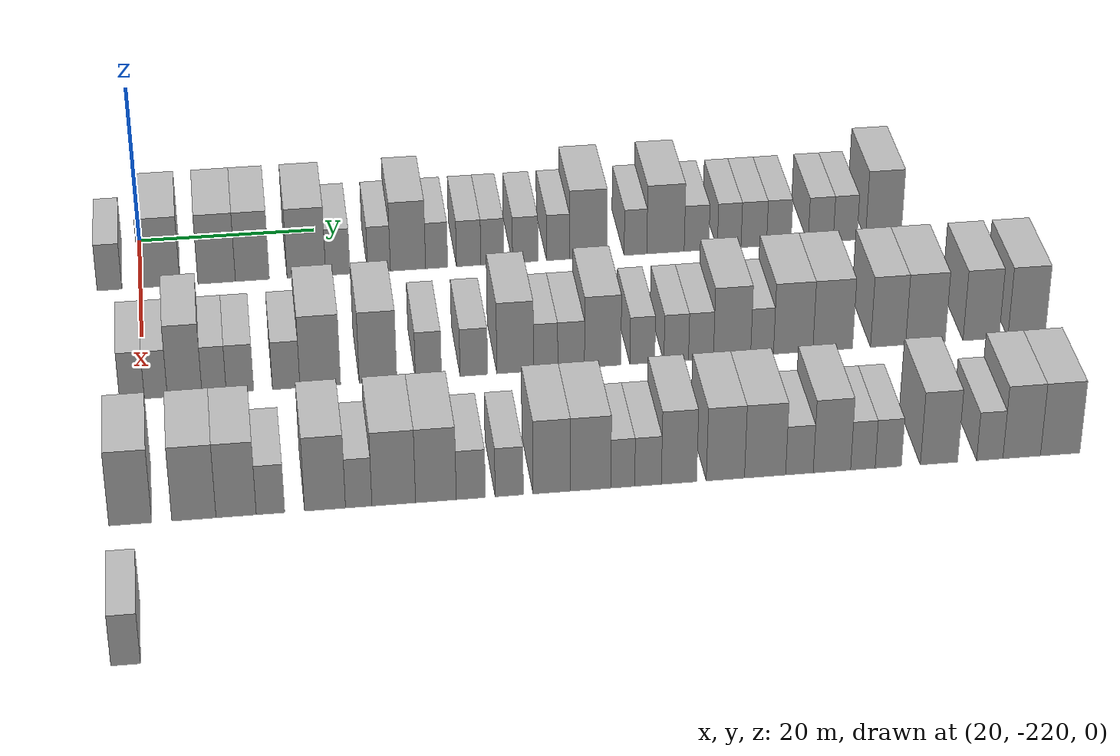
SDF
<sdf version="1.6">
 <world name="default">
  <model name="building_37">
   <static>1</static>
   <pose>25.0000 -223.4613 0 0.000000 0.000000 0.000000</pose>
   <link name="link">
    <pose>0 0 3.00 0 0 0</pose>
    <collision name="collision"><geometry><box><size>10.0000 2.7568 6.0000</size></box></geometry></collision>
    <visual name="visual">
     <cast_shadows>0</cast_shadows>
     <geometry><box><size>10.0000 2.7568 6.0000</size></box></geometry>
     <material>
      <script>
       <uri>model://HANNAS_wall/materials/scripts</uri>
       <uri>model://HANNAS_wall/materials/textures</uri>
       <name>vrc/HANNAS_wall</name>
      </script>
     </material>
    </visual>
   </link>
  </model>
  <model name="building_38">
   <static>1</static>
   <pose>25.0000 -217.8344 0 0.000000 0.000000 0.000000</pose>
   <link name="link">
    <pose>0 0 4.50 0 0 0</pose>
    <collision name="collision"><geometry><box><size>10.0000 4.4970 9.0000</size></box></geometry></collision>
    <visual name="visual">
     <cast_shadows>0</cast_shadows>
     <geometry><box><size>10.0000 4.4970 9.0000</size></box></geometry>
     <material>
      <script>
       <uri>model://HANNAS_wall/materials/scripts</uri>
       <uri>model://HANNAS_wall/materials/textures</uri>
       <name>vrc/HANNAS_wall</name>
      </script>
     </material>
    </visual>
   </link>
  </model>
  <model name="building_39">
   <static>1</static>
   <pose>25.0000 -211.4842 0 0.000000 0.000000 0.000000</pose>
   <link name="link">
    <pose>0 0 4.50 0 0 0</pose>
    <collision name="collision"><geometry><box><size>10.0000 4.2034 9.0000</size></box></geometry></collision>
    <visual name="visual">
     <cast_shadows>0</cast_shadows>
     <geometry><box><size>10.0000 4.2034 9.0000</size></box></geometry>
     <material>
      <script>
       <uri>model://HANNAS_wall/materials/scripts</uri>
       <uri>model://HANNAS_wall/materials/textures</uri>
       <name>vrc/HANNAS_wall</name>
      </script>
     </material>
    </visual>
   </link>
  </model>
  <model name="building_40">
   <static>1</static>
   <pose>25.0000 -207.4801 0 0.000000 0.000000 0.000000</pose>
   <link name="link">
    <pose>0 0 4.50 0 0 0</pose>
    <collision name="collision"><geometry><box><size>10.0000 3.8048 9.0000</size></box></geometry></collision>
    <visual name="visual">
     <cast_shadows>0</cast_shadows>
     <geometry><box><size>10.0000 3.8048 9.0000</size></box></geometry>
     <material>
      <script>
       <uri>model://HANNAS_wall/materials/scripts</uri>
       <uri>model://HANNAS_wall/materials/textures</uri>
       <name>vrc/HANNAS_wall</name>
      </script>
     </material>
    </visual>
   </link>
  </model>
  <model name="building_41">
   <static>1</static>
   <pose>25.0000 -201.3981 0 0.000000 0.000000 0.000000</pose>
   <link name="link">
    <pose>0 0 4.50 0 0 0</pose>
    <collision name="collision"><geometry><box><size>10.0000 4.3593 9.0000</size></box></geometry></collision>
    <visual name="visual">
     <cast_shadows>0</cast_shadows>
     <geometry><box><size>10.0000 4.3593 9.0000</size></box></geometry>
     <material>
      <script>
       <uri>model://HANNAS_wall/materials/scripts</uri>
       <uri>model://HANNAS_wall/materials/textures</uri>
       <name>vrc/HANNAS_wall</name>
      </script>
     </material>
    </visual>
   </link>
  </model>
  <model name="building_42">
   <static>1</static>
   <pose>25.0000 -197.8453 0 0.000000 0.000000 0.000000</pose>
   <link name="link">
    <pose>0 0 3.00 0 0 0</pose>
    <collision name="collision"><geometry><box><size>10.0000 2.7462 6.0000</size></box></geometry></collision>
    <visual name="visual">
     <cast_shadows>0</cast_shadows>
     <geometry><box><size>10.0000 2.7462 6.0000</size></box></geometry>
     <material>
      <script>
       <uri>model://HANNAS_wall/materials/scripts</uri>
       <uri>model://HANNAS_wall/materials/textures</uri>
       <name>vrc/HANNAS_wall</name>
      </script>
     </material>
    </visual>
   </link>
  </model>
  <model name="building_43">
   <static>1</static>
   <pose>25.0000 -193.1822 0 0.000000 0.000000 0.000000</pose>
   <link name="link">
    <pose>0 0 3.00 0 0 0</pose>
    <collision name="collision"><geometry><box><size>10.0000 2.5799 6.0000</size></box></geometry></collision>
    <visual name="visual">
     <cast_shadows>0</cast_shadows>
     <geometry><box><size>10.0000 2.5799 6.0000</size></box></geometry>
     <material>
      <script>
       <uri>model://HANNAS_wall/materials/scripts</uri>
       <uri>model://HANNAS_wall/materials/textures</uri>
       <name>vrc/HANNAS_wall</name>
      </script>
     </material>
    </visual>
   </link>
  </model>
  <model name="building_44">
   <static>1</static>
   <pose>25.0000 -189.8920 0 0.000000 0.000000 0.000000</pose>
   <link name="link">
    <pose>0 0 4.50 0 0 0</pose>
    <collision name="collision"><geometry><box><size>10.0000 4.0007 9.0000</size></box></geometry></collision>
    <visual name="visual">
     <cast_shadows>0</cast_shadows>
     <geometry><box><size>10.0000 4.0007 9.0000</size></box></geometry>
     <material>
      <script>
       <uri>model://HANNAS_wall/materials/scripts</uri>
       <uri>model://HANNAS_wall/materials/textures</uri>
       <name>vrc/HANNAS_wall</name>
      </script>
     </material>
    </visual>
   </link>
  </model>
  <model name="building_45">
   <static>1</static>
   <pose>25.0000 -186.6365 0 0.000000 0.000000 0.000000</pose>
   <link name="link">
    <pose>0 0 3.00 0 0 0</pose>
    <collision name="collision"><geometry><box><size>10.0000 2.5104 6.0000</size></box></geometry></collision>
    <visual name="visual">
     <cast_shadows>0</cast_shadows>
     <geometry><box><size>10.0000 2.5104 6.0000</size></box></geometry>
     <material>
      <script>
       <uri>model://HANNAS_wall/materials/scripts</uri>
       <uri>model://HANNAS_wall/materials/textures</uri>
       <name>vrc/HANNAS_wall</name>
      </script>
     </material>
    </visual>
   </link>
  </model>
  <model name="building_46">
   <static>1</static>
   <pose>25.0000 -182.9909 0 0.000000 0.000000 0.000000</pose>
   <link name="link">
    <pose>0 0 3.00 0 0 0</pose>
    <collision name="collision"><geometry><box><size>10.0000 2.7807 6.0000</size></box></geometry></collision>
    <visual name="visual">
     <cast_shadows>0</cast_shadows>
     <geometry><box><size>10.0000 2.7807 6.0000</size></box></geometry>
     <material>
      <script>
       <uri>model://HANNAS_wall/materials/scripts</uri>
       <uri>model://HANNAS_wall/materials/textures</uri>
       <name>vrc/HANNAS_wall</name>
      </script>
     </material>
    </visual>
   </link>
  </model>
  <model name="building_47">
   <static>1</static>
   <pose>25.0000 -180.2894 0 0.000000 0.000000 0.000000</pose>
   <link name="link">
    <pose>0 0 3.00 0 0 0</pose>
    <collision name="collision"><geometry><box><size>10.0000 2.6222 6.0000</size></box></geometry></collision>
    <visual name="visual">
     <cast_shadows>0</cast_shadows>
     <geometry><box><size>10.0000 2.6222 6.0000</size></box></geometry>
     <material>
      <script>
       <uri>model://HANNAS_wall/materials/scripts</uri>
       <uri>model://HANNAS_wall/materials/textures</uri>
       <name>vrc/HANNAS_wall</name>
      </script>
     </material>
    </visual>
   </link>
  </model>
  <model name="building_48">
   <static>1</static>
   <pose>25.0000 -176.5260 0 0.000000 0.000000 0.000000</pose>
   <link name="link">
    <pose>0 0 3.00 0 0 0</pose>
    <collision name="collision"><geometry><box><size>10.0000 2.9046 6.0000</size></box></geometry></collision>
    <visual name="visual">
     <cast_shadows>0</cast_shadows>
     <geometry><box><size>10.0000 2.9046 6.0000</size></box></geometry>
     <material>
      <script>
       <uri>model://HANNAS_wall/materials/scripts</uri>
       <uri>model://HANNAS_wall/materials/textures</uri>
       <name>vrc/HANNAS_wall</name>
      </script>
     </material>
    </visual>
   </link>
  </model>
  <model name="building_49">
   <static>1</static>
   <pose>25.0000 -172.7656 0 0.000000 0.000000 0.000000</pose>
   <link name="link">
    <pose>0 0 3.00 0 0 0</pose>
    <collision name="collision"><geometry><box><size>10.0000 2.6161 6.0000</size></box></geometry></collision>
    <visual name="visual">
     <cast_shadows>0</cast_shadows>
     <geometry><box><size>10.0000 2.6161 6.0000</size></box></geometry>
     <material>
      <script>
       <uri>model://HANNAS_wall/materials/scripts</uri>
       <uri>model://HANNAS_wall/materials/textures</uri>
       <name>vrc/HANNAS_wall</name>
      </script>
     </material>
    </visual>
   </link>
  </model>
  <model name="building_50">
   <static>1</static>
   <pose>25.0000 -169.3121 0 0.000000 0.000000 0.000000</pose>
   <link name="link">
    <pose>0 0 4.50 0 0 0</pose>
    <collision name="collision"><geometry><box><size>10.0000 4.2911 9.0000</size></box></geometry></collision>
    <visual name="visual">
     <cast_shadows>0</cast_shadows>
     <geometry><box><size>10.0000 4.2911 9.0000</size></box></geometry>
     <material>
      <script>
       <uri>model://HANNAS_wall/materials/scripts</uri>
       <uri>model://HANNAS_wall/materials/textures</uri>
       <name>vrc/HANNAS_wall</name>
      </script>
     </material>
    </visual>
   </link>
  </model>
  <model name="building_51">
   <static>1</static>
   <pose>25.0000 -163.8628 0 0.000000 0.000000 0.000000</pose>
   <link name="link">
    <pose>0 0 3.00 0 0 0</pose>
    <collision name="collision"><geometry><box><size>10.0000 2.6074 6.0000</size></box></geometry></collision>
    <visual name="visual">
     <cast_shadows>0</cast_shadows>
     <geometry><box><size>10.0000 2.6074 6.0000</size></box></geometry>
     <material>
      <script>
       <uri>model://HANNAS_wall/materials/scripts</uri>
       <uri>model://HANNAS_wall/materials/textures</uri>
       <name>vrc/HANNAS_wall</name>
      </script>
     </material>
    </visual>
   </link>
  </model>
  <model name="building_52">
   <static>1</static>
   <pose>25.0000 -160.3956 0 0.000000 0.000000 0.000000</pose>
   <link name="link">
    <pose>0 0 4.50 0 0 0</pose>
    <collision name="collision"><geometry><box><size>10.0000 4.3271 9.0000</size></box></geometry></collision>
    <visual name="visual">
     <cast_shadows>0</cast_shadows>
     <geometry><box><size>10.0000 4.3271 9.0000</size></box></geometry>
     <material>
      <script>
       <uri>model://HANNAS_wall/materials/scripts</uri>
       <uri>model://HANNAS_wall/materials/textures</uri>
       <name>vrc/HANNAS_wall</name>
      </script>
     </material>
    </visual>
   </link>
  </model>
  <model name="building_53">
   <static>1</static>
   <pose>25.0000 -156.8101 0 0.000000 0.000000 0.000000</pose>
   <link name="link">
    <pose>0 0 3.00 0 0 0</pose>
    <collision name="collision"><geometry><box><size>10.0000 2.8438 6.0000</size></box></geometry></collision>
    <visual name="visual">
     <cast_shadows>0</cast_shadows>
     <geometry><box><size>10.0000 2.8438 6.0000</size></box></geometry>
     <material>
      <script>
       <uri>model://HANNAS_wall/materials/scripts</uri>
       <uri>model://HANNAS_wall/materials/textures</uri>
       <name>vrc/HANNAS_wall</name>
      </script>
     </material>
    </visual>
   </link>
  </model>
  <model name="building_54">
   <static>1</static>
   <pose>25.0000 -153.0133 0 0.000000 0.000000 0.000000</pose>
   <link name="link">
    <pose>0 0 3.00 0 0 0</pose>
    <collision name="collision"><geometry><box><size>10.0000 2.7499 6.0000</size></box></geometry></collision>
    <visual name="visual">
     <cast_shadows>0</cast_shadows>
     <geometry><box><size>10.0000 2.7499 6.0000</size></box></geometry>
     <material>
      <script>
       <uri>model://HANNAS_wall/materials/scripts</uri>
       <uri>model://HANNAS_wall/materials/textures</uri>
       <name>vrc/HANNAS_wall</name>
      </script>
     </material>
    </visual>
   </link>
  </model>
  <model name="building_55">
   <static>1</static>
   <pose>25.0000 -150.1531 0 0.000000 0.000000 0.000000</pose>
   <link name="link">
    <pose>0 0 3.00 0 0 0</pose>
    <collision name="collision"><geometry><box><size>10.0000 2.9705 6.0000</size></box></geometry></collision>
    <visual name="visual">
     <cast_shadows>0</cast_shadows>
     <geometry><box><size>10.0000 2.9705 6.0000</size></box></geometry>
     <material>
      <script>
       <uri>model://HANNAS_wall/materials/scripts</uri>
       <uri>model://HANNAS_wall/materials/textures</uri>
       <name>vrc/HANNAS_wall</name>
      </script>
     </material>
    </visual>
   </link>
  </model>
  <model name="building_56">
   <static>1</static>
   <pose>25.0000 -147.2460 0 0.000000 0.000000 0.000000</pose>
   <link name="link">
    <pose>0 0 3.00 0 0 0</pose>
    <collision name="collision"><geometry><box><size>10.0000 2.8437 6.0000</size></box></geometry></collision>
    <visual name="visual">
     <cast_shadows>0</cast_shadows>
     <geometry><box><size>10.0000 2.8437 6.0000</size></box></geometry>
     <material>
      <script>
       <uri>model://HANNAS_wall/materials/scripts</uri>
       <uri>model://HANNAS_wall/materials/textures</uri>
       <name>vrc/HANNAS_wall</name>
      </script>
     </material>
    </visual>
   </link>
  </model>
  <model name="building_57">
   <static>1</static>
   <pose>25.0000 -142.3547 0 0.000000 0.000000 0.000000</pose>
   <link name="link">
    <pose>0 0 3.00 0 0 0</pose>
    <collision name="collision"><geometry><box><size>10.0000 2.9388 6.0000</size></box></geometry></collision>
    <visual name="visual">
     <cast_shadows>0</cast_shadows>
     <geometry><box><size>10.0000 2.9388 6.0000</size></box></geometry>
     <material>
      <script>
       <uri>model://HANNAS_wall/materials/scripts</uri>
       <uri>model://HANNAS_wall/materials/textures</uri>
       <name>vrc/HANNAS_wall</name>
      </script>
     </material>
    </visual>
   </link>
  </model>
  <model name="building_58">
   <static>1</static>
   <pose>25.0000 -139.4949 0 0.000000 0.000000 0.000000</pose>
   <link name="link">
    <pose>0 0 3.00 0 0 0</pose>
    <collision name="collision"><geometry><box><size>10.0000 2.7809 6.0000</size></box></geometry></collision>
    <visual name="visual">
     <cast_shadows>0</cast_shadows>
     <geometry><box><size>10.0000 2.7809 6.0000</size></box></geometry>
     <material>
      <script>
       <uri>model://HANNAS_wall/materials/scripts</uri>
       <uri>model://HANNAS_wall/materials/textures</uri>
       <name>vrc/HANNAS_wall</name>
      </script>
     </material>
    </visual>
   </link>
  </model>
  <model name="building_59">
   <static>1</static>
   <pose>25.0000 -135.0178 0 0.000000 0.000000 0.000000</pose>
   <link name="link">
    <pose>0 0 4.50 0 0 0</pose>
    <collision name="collision"><geometry><box><size>10.0000 4.1733 9.0000</size></box></geometry></collision>
    <visual name="visual">
     <cast_shadows>0</cast_shadows>
     <geometry><box><size>10.0000 4.1733 9.0000</size></box></geometry>
     <material>
      <script>
       <uri>model://HANNAS_wall/materials/scripts</uri>
       <uri>model://HANNAS_wall/materials/textures</uri>
       <name>vrc/HANNAS_wall</name>
      </script>
     </material>
    </visual>
   </link>
  </model>
  <model name="building_224">
   <static>1</static>
   <pose>47.0000 -221.1367 0 0.000000 0.000000 0.000000</pose>
   <link name="link">
    <pose>0 0 3.00 0 0 0</pose>
    <collision name="collision"><geometry><box><size>10.0000 2.6164 6.0000</size></box></geometry></collision>
    <visual name="visual">
     <cast_shadows>0</cast_shadows>
     <geometry><box><size>10.0000 2.6164 6.0000</size></box></geometry>
     <material>
      <script>
       <uri>model://HANNAS_wall/materials/scripts</uri>
       <uri>model://HANNAS_wall/materials/textures</uri>
       <name>vrc/HANNAS_wall</name>
      </script>
     </material>
    </visual>
   </link>
  </model>
  <model name="building_225">
   <static>1</static>
   <pose>47.0000 -218.6126 0 0.000000 0.000000 0.000000</pose>
   <link name="link">
    <pose>0 0 3.00 0 0 0</pose>
    <collision name="collision"><geometry><box><size>10.0000 2.4319 6.0000</size></box></geometry></collision>
    <visual name="visual">
     <cast_shadows>0</cast_shadows>
     <geometry><box><size>10.0000 2.4319 6.0000</size></box></geometry>
     <material>
      <script>
       <uri>model://HANNAS_wall/materials/scripts</uri>
       <uri>model://HANNAS_wall/materials/textures</uri>
       <name>vrc/HANNAS_wall</name>
      </script>
     </material>
    </visual>
   </link>
  </model>
  <model name="building_226">
   <static>1</static>
   <pose>47.0000 -215.5607 0 0.000000 0.000000 0.000000</pose>
   <link name="link">
    <pose>0 0 4.50 0 0 0</pose>
    <collision name="collision"><geometry><box><size>10.0000 3.6720 9.0000</size></box></geometry></collision>
    <visual name="visual">
     <cast_shadows>0</cast_shadows>
     <geometry><box><size>10.0000 3.6720 9.0000</size></box></geometry>
     <material>
      <script>
       <uri>model://HANNAS_wall/materials/scripts</uri>
       <uri>model://HANNAS_wall/materials/textures</uri>
       <name>vrc/HANNAS_wall</name>
      </script>
     </material>
    </visual>
   </link>
  </model>
  <model name="building_227">
   <static>1</static>
   <pose>47.0000 -212.4374 0 0.000000 0.000000 0.000000</pose>
   <link name="link">
    <pose>0 0 3.00 0 0 0</pose>
    <collision name="collision"><geometry><box><size>10.0000 2.5745 6.0000</size></box></geometry></collision>
    <visual name="visual">
     <cast_shadows>0</cast_shadows>
     <geometry><box><size>10.0000 2.5745 6.0000</size></box></geometry>
     <material>
      <script>
       <uri>model://HANNAS_wall/materials/scripts</uri>
       <uri>model://HANNAS_wall/materials/textures</uri>
       <name>vrc/HANNAS_wall</name>
      </script>
     </material>
    </visual>
   </link>
  </model>
  <model name="building_228">
   <static>1</static>
   <pose>47.0000 -209.6906 0 0.000000 0.000000 0.000000</pose>
   <link name="link">
    <pose>0 0 3.00 0 0 0</pose>
    <collision name="collision"><geometry><box><size>10.0000 2.9191 6.0000</size></box></geometry></collision>
    <visual name="visual">
     <cast_shadows>0</cast_shadows>
     <geometry><box><size>10.0000 2.9191 6.0000</size></box></geometry>
     <material>
      <script>
       <uri>model://HANNAS_wall/materials/scripts</uri>
       <uri>model://HANNAS_wall/materials/textures</uri>
       <name>vrc/HANNAS_wall</name>
      </script>
     </material>
    </visual>
   </link>
  </model>
  <model name="building_229">
   <static>1</static>
   <pose>47.0000 -204.7652 0 0.000000 0.000000 0.000000</pose>
   <link name="link">
    <pose>0 0 3.00 0 0 0</pose>
    <collision name="collision"><geometry><box><size>10.0000 2.9318 6.0000</size></box></geometry></collision>
    <visual name="visual">
     <cast_shadows>0</cast_shadows>
     <geometry><box><size>10.0000 2.9318 6.0000</size></box></geometry>
     <material>
      <script>
       <uri>model://HANNAS_wall/materials/scripts</uri>
       <uri>model://HANNAS_wall/materials/textures</uri>
       <name>vrc/HANNAS_wall</name>
      </script>
     </material>
    </visual>
   </link>
  </model>
  <model name="building_230">
   <static>1</static>
   <pose>47.0000 -201.1268 0 0.000000 0.000000 0.000000</pose>
   <link name="link">
    <pose>0 0 4.50 0 0 0</pose>
    <collision name="collision"><geometry><box><size>10.0000 4.3448 9.0000</size></box></geometry></collision>
    <visual name="visual">
     <cast_shadows>0</cast_shadows>
     <geometry><box><size>10.0000 4.3448 9.0000</size></box></geometry>
     <material>
      <script>
       <uri>model://HANNAS_wall/materials/scripts</uri>
       <uri>model://HANNAS_wall/materials/textures</uri>
       <name>vrc/HANNAS_wall</name>
      </script>
     </material>
    </visual>
   </link>
  </model>
  <model name="building_231">
   <static>1</static>
   <pose>47.0000 -194.9385 0 0.000000 0.000000 0.000000</pose>
   <link name="link">
    <pose>0 0 4.50 0 0 0</pose>
    <collision name="collision"><geometry><box><size>10.0000 4.0318 9.0000</size></box></geometry></collision>
    <visual name="visual">
     <cast_shadows>0</cast_shadows>
     <geometry><box><size>10.0000 4.0318 9.0000</size></box></geometry>
     <material>
      <script>
       <uri>model://HANNAS_wall/materials/scripts</uri>
       <uri>model://HANNAS_wall/materials/textures</uri>
       <name>vrc/HANNAS_wall</name>
      </script>
     </material>
    </visual>
   </link>
  </model>
  <model name="building_232">
   <static>1</static>
   <pose>47.0000 -189.5181 0 0.000000 0.000000 0.000000</pose>
   <link name="link">
    <pose>0 0 3.00 0 0 0</pose>
    <collision name="collision"><geometry><box><size>10.0000 2.8091 6.0000</size></box></geometry></collision>
    <visual name="visual">
     <cast_shadows>0</cast_shadows>
     <geometry><box><size>10.0000 2.8091 6.0000</size></box></geometry>
     <material>
      <script>
       <uri>model://HANNAS_wall/materials/scripts</uri>
       <uri>model://HANNAS_wall/materials/textures</uri>
       <name>vrc/HANNAS_wall</name>
      </script>
     </material>
    </visual>
   </link>
  </model>
  <model name="building_233">
   <static>1</static>
   <pose>47.0000 -184.6235 0 0.000000 0.000000 0.000000</pose>
   <link name="link">
    <pose>0 0 3.00 0 0 0</pose>
    <collision name="collision"><geometry><box><size>10.0000 2.9800 6.0000</size></box></geometry></collision>
    <visual name="visual">
     <cast_shadows>0</cast_shadows>
     <geometry><box><size>10.0000 2.9800 6.0000</size></box></geometry>
     <material>
      <script>
       <uri>model://HANNAS_wall/materials/scripts</uri>
       <uri>model://HANNAS_wall/materials/textures</uri>
       <name>vrc/HANNAS_wall</name>
      </script>
     </material>
    </visual>
   </link>
  </model>
  <model name="building_234">
   <static>1</static>
   <pose>47.0000 -180.1509 0 0.000000 0.000000 0.000000</pose>
   <link name="link">
    <pose>0 0 4.50 0 0 0</pose>
    <collision name="collision"><geometry><box><size>10.0000 3.9651 9.0000</size></box></geometry></collision>
    <visual name="visual">
     <cast_shadows>0</cast_shadows>
     <geometry><box><size>10.0000 3.9651 9.0000</size></box></geometry>
     <material>
      <script>
       <uri>model://HANNAS_wall/materials/scripts</uri>
       <uri>model://HANNAS_wall/materials/textures</uri>
       <name>vrc/HANNAS_wall</name>
      </script>
     </material>
    </visual>
   </link>
  </model>
  <model name="building_235">
   <static>1</static>
   <pose>47.0000 -176.8552 0 0.000000 0.000000 0.000000</pose>
   <link name="link">
    <pose>0 0 3.00 0 0 0</pose>
    <collision name="collision"><geometry><box><size>10.0000 2.6263 6.0000</size></box></geometry></collision>
    <visual name="visual">
     <cast_shadows>0</cast_shadows>
     <geometry><box><size>10.0000 2.6263 6.0000</size></box></geometry>
     <material>
      <script>
       <uri>model://HANNAS_wall/materials/scripts</uri>
       <uri>model://HANNAS_wall/materials/textures</uri>
       <name>vrc/HANNAS_wall</name>
      </script>
     </material>
    </visual>
   </link>
  </model>
  <model name="building_236">
   <static>1</static>
   <pose>47.0000 -174.0879 0 0.000000 0.000000 0.000000</pose>
   <link name="link">
    <pose>0 0 3.00 0 0 0</pose>
    <collision name="collision"><geometry><box><size>10.0000 2.9083 6.0000</size></box></geometry></collision>
    <visual name="visual">
     <cast_shadows>0</cast_shadows>
     <geometry><box><size>10.0000 2.9083 6.0000</size></box></geometry>
     <material>
      <script>
       <uri>model://HANNAS_wall/materials/scripts</uri>
       <uri>model://HANNAS_wall/materials/textures</uri>
       <name>vrc/HANNAS_wall</name>
      </script>
     </material>
    </visual>
   </link>
  </model>
  <model name="building_237">
   <static>1</static>
   <pose>47.0000 -170.6551 0 0.000000 0.000000 0.000000</pose>
   <link name="link">
    <pose>0 0 4.50 0 0 0</pose>
    <collision name="collision"><geometry><box><size>10.0000 3.9573 9.0000</size></box></geometry></collision>
    <visual name="visual">
     <cast_shadows>0</cast_shadows>
     <geometry><box><size>10.0000 3.9573 9.0000</size></box></geometry>
     <material>
      <script>
       <uri>model://HANNAS_wall/materials/scripts</uri>
       <uri>model://HANNAS_wall/materials/textures</uri>
       <name>vrc/HANNAS_wall</name>
      </script>
     </material>
    </visual>
   </link>
  </model>
  <model name="building_238">
   <static>1</static>
   <pose>47.0000 -166.3206 0 0.000000 0.000000 0.000000</pose>
   <link name="link">
    <pose>0 0 3.00 0 0 0</pose>
    <collision name="collision"><geometry><box><size>10.0000 2.7118 6.0000</size></box></geometry></collision>
    <visual name="visual">
     <cast_shadows>0</cast_shadows>
     <geometry><box><size>10.0000 2.7118 6.0000</size></box></geometry>
     <material>
      <script>
       <uri>model://HANNAS_wall/materials/scripts</uri>
       <uri>model://HANNAS_wall/materials/textures</uri>
       <name>vrc/HANNAS_wall</name>
      </script>
     </material>
    </visual>
   </link>
  </model>
  <model name="building_239">
   <static>1</static>
   <pose>47.0000 -162.6172 0 0.000000 0.000000 0.000000</pose>
   <link name="link">
    <pose>0 0 3.00 0 0 0</pose>
    <collision name="collision"><geometry><box><size>10.0000 2.6948 6.0000</size></box></geometry></collision>
    <visual name="visual">
     <cast_shadows>0</cast_shadows>
     <geometry><box><size>10.0000 2.6948 6.0000</size></box></geometry>
     <material>
      <script>
       <uri>model://HANNAS_wall/materials/scripts</uri>
       <uri>model://HANNAS_wall/materials/textures</uri>
       <name>vrc/HANNAS_wall</name>
      </script>
     </material>
    </visual>
   </link>
  </model>
  <model name="building_240">
   <static>1</static>
   <pose>47.0000 -159.9008 0 0.000000 0.000000 0.000000</pose>
   <link name="link">
    <pose>0 0 3.00 0 0 0</pose>
    <collision name="collision"><geometry><box><size>10.0000 2.7381 6.0000</size></box></geometry></collision>
    <visual name="visual">
     <cast_shadows>0</cast_shadows>
     <geometry><box><size>10.0000 2.7381 6.0000</size></box></geometry>
     <material>
      <script>
       <uri>model://HANNAS_wall/materials/scripts</uri>
       <uri>model://HANNAS_wall/materials/textures</uri>
       <name>vrc/HANNAS_wall</name>
      </script>
     </material>
    </visual>
   </link>
  </model>
  <model name="building_241">
   <static>1</static>
   <pose>47.0000 -156.4852 0 0.000000 0.000000 0.000000</pose>
   <link name="link">
    <pose>0 0 4.50 0 0 0</pose>
    <collision name="collision"><geometry><box><size>10.0000 4.0929 9.0000</size></box></geometry></collision>
    <visual name="visual">
     <cast_shadows>0</cast_shadows>
     <geometry><box><size>10.0000 4.0929 9.0000</size></box></geometry>
     <material>
      <script>
       <uri>model://HANNAS_wall/materials/scripts</uri>
       <uri>model://HANNAS_wall/materials/textures</uri>
       <name>vrc/HANNAS_wall</name>
      </script>
     </material>
    </visual>
   </link>
  </model>
  <model name="building_242">
   <static>1</static>
   <pose>47.0000 -153.1808 0 0.000000 0.000000 0.000000</pose>
   <link name="link">
    <pose>0 0 3.00 0 0 0</pose>
    <collision name="collision"><geometry><box><size>10.0000 2.5161 6.0000</size></box></geometry></collision>
    <visual name="visual">
     <cast_shadows>0</cast_shadows>
     <geometry><box><size>10.0000 2.5161 6.0000</size></box></geometry>
     <material>
      <script>
       <uri>model://HANNAS_wall/materials/scripts</uri>
       <uri>model://HANNAS_wall/materials/textures</uri>
       <name>vrc/HANNAS_wall</name>
      </script>
     </material>
    </visual>
   </link>
  </model>
  <model name="building_243">
   <static>1</static>
   <pose>47.0000 -149.7493 0 0.000000 0.000000 0.000000</pose>
   <link name="link">
    <pose>0 0 4.50 0 0 0</pose>
    <collision name="collision"><geometry><box><size>10.0000 4.3468 9.0000</size></box></geometry></collision>
    <visual name="visual">
     <cast_shadows>0</cast_shadows>
     <geometry><box><size>10.0000 4.3468 9.0000</size></box></geometry>
     <material>
      <script>
       <uri>model://HANNAS_wall/materials/scripts</uri>
       <uri>model://HANNAS_wall/materials/textures</uri>
       <name>vrc/HANNAS_wall</name>
      </script>
     </material>
    </visual>
   </link>
  </model>
  <model name="building_244">
   <static>1</static>
   <pose>47.0000 -145.3780 0 0.000000 0.000000 0.000000</pose>
   <link name="link">
    <pose>0 0 4.50 0 0 0</pose>
    <collision name="collision"><geometry><box><size>10.0000 4.3959 9.0000</size></box></geometry></collision>
    <visual name="visual">
     <cast_shadows>0</cast_shadows>
     <geometry><box><size>10.0000 4.3959 9.0000</size></box></geometry>
     <material>
      <script>
       <uri>model://HANNAS_wall/materials/scripts</uri>
       <uri>model://HANNAS_wall/materials/textures</uri>
       <name>vrc/HANNAS_wall</name>
      </script>
     </material>
    </visual>
   </link>
  </model>
  <model name="building_245">
   <static>1</static>
   <pose>47.0000 -139.2296 0 0.000000 0.000000 0.000000</pose>
   <link name="link">
    <pose>0 0 4.50 0 0 0</pose>
    <collision name="collision"><geometry><box><size>10.0000 3.9009 9.0000</size></box></geometry></collision>
    <visual name="visual">
     <cast_shadows>0</cast_shadows>
     <geometry><box><size>10.0000 3.9009 9.0000</size></box></geometry>
     <material>
      <script>
       <uri>model://HANNAS_wall/materials/scripts</uri>
       <uri>model://HANNAS_wall/materials/textures</uri>
       <name>vrc/HANNAS_wall</name>
      </script>
     </material>
    </visual>
   </link>
  </model>
  <model name="building_246">
   <static>1</static>
   <pose>47.0000 -135.0767 0 0.000000 0.000000 0.000000</pose>
   <link name="link">
    <pose>0 0 4.50 0 0 0</pose>
    <collision name="collision"><geometry><box><size>10.0000 4.4049 9.0000</size></box></geometry></collision>
    <visual name="visual">
     <cast_shadows>0</cast_shadows>
     <geometry><box><size>10.0000 4.4049 9.0000</size></box></geometry>
     <material>
      <script>
       <uri>model://HANNAS_wall/materials/scripts</uri>
       <uri>model://HANNAS_wall/materials/textures</uri>
       <name>vrc/HANNAS_wall</name>
      </script>
     </material>
    </visual>
   </link>
  </model>
  <model name="building_247">
   <static>1</static>
   <pose>47.0000 -128.8627 0 0.000000 0.000000 0.000000</pose>
   <link name="link">
    <pose>0 0 4.50 0 0 0</pose>
    <collision name="collision"><geometry><box><size>10.0000 4.0230 9.0000</size></box></geometry></collision>
    <visual name="visual">
     <cast_shadows>0</cast_shadows>
     <geometry><box><size>10.0000 4.0230 9.0000</size></box></geometry>
     <material>
      <script>
       <uri>model://HANNAS_wall/materials/scripts</uri>
       <uri>model://HANNAS_wall/materials/textures</uri>
       <name>vrc/HANNAS_wall</name>
      </script>
     </material>
    </visual>
   </link>
  </model>
  <model name="building_248">
   <static>1</static>
   <pose>47.0000 -123.7600 0 0.000000 0.000000 0.000000</pose>
   <link name="link">
    <pose>0 0 4.50 0 0 0</pose>
    <collision name="collision"><geometry><box><size>10.0000 4.1823 9.0000</size></box></geometry></collision>
    <visual name="visual">
     <cast_shadows>0</cast_shadows>
     <geometry><box><size>10.0000 4.1823 9.0000</size></box></geometry>
     <material>
      <script>
       <uri>model://HANNAS_wall/materials/scripts</uri>
       <uri>model://HANNAS_wall/materials/textures</uri>
       <name>vrc/HANNAS_wall</name>
      </script>
     </material>
    </visual>
   </link>
  </model>
  <model name="building_407">
   <static>1</static>
   <pose>69.0000 -221.4726 0 0.000000 0.000000 0.000000</pose>
   <link name="link">
    <pose>0 0 4.50 0 0 0</pose>
    <collision name="collision"><geometry><box><size>10.0000 4.2784 9.0000</size></box></geometry></collision>
    <visual name="visual">
     <cast_shadows>0</cast_shadows>
     <geometry><box><size>10.0000 4.2784 9.0000</size></box></geometry>
     <material>
      <script>
       <uri>model://HANNAS_wall/materials/scripts</uri>
       <uri>model://HANNAS_wall/materials/textures</uri>
       <name>vrc/HANNAS_wall</name>
      </script>
     </material>
    </visual>
   </link>
  </model>
  <model name="building_408">
   <static>1</static>
   <pose>69.0000 -215.1237 0 0.000000 0.000000 0.000000</pose>
   <link name="link">
    <pose>0 0 4.50 0 0 0</pose>
    <collision name="collision"><geometry><box><size>10.0000 4.4194 9.0000</size></box></geometry></collision>
    <visual name="visual">
     <cast_shadows>0</cast_shadows>
     <geometry><box><size>10.0000 4.4194 9.0000</size></box></geometry>
     <material>
      <script>
       <uri>model://HANNAS_wall/materials/scripts</uri>
       <uri>model://HANNAS_wall/materials/textures</uri>
       <name>vrc/HANNAS_wall</name>
      </script>
     </material>
    </visual>
   </link>
  </model>
  <model name="building_409">
   <static>1</static>
   <pose>69.0000 -210.8952 0 0.000000 0.000000 0.000000</pose>
   <link name="link">
    <pose>0 0 4.50 0 0 0</pose>
    <collision name="collision"><geometry><box><size>10.0000 4.0376 9.0000</size></box></geometry></collision>
    <visual name="visual">
     <cast_shadows>0</cast_shadows>
     <geometry><box><size>10.0000 4.0376 9.0000</size></box></geometry>
     <material>
      <script>
       <uri>model://HANNAS_wall/materials/scripts</uri>
       <uri>model://HANNAS_wall/materials/textures</uri>
       <name>vrc/HANNAS_wall</name>
      </script>
     </material>
    </visual>
   </link>
  </model>
  <model name="building_410">
   <static>1</static>
   <pose>69.0000 -207.4469 0 0.000000 0.000000 0.000000</pose>
   <link name="link">
    <pose>0 0 3.00 0 0 0</pose>
    <collision name="collision"><geometry><box><size>10.0000 2.8589 6.0000</size></box></geometry></collision>
    <visual name="visual">
     <cast_shadows>0</cast_shadows>
     <geometry><box><size>10.0000 2.8589 6.0000</size></box></geometry>
     <material>
      <script>
       <uri>model://HANNAS_wall/materials/scripts</uri>
       <uri>model://HANNAS_wall/materials/textures</uri>
       <name>vrc/HANNAS_wall</name>
      </script>
     </material>
    </visual>
   </link>
  </model>
  <model name="building_411">
   <static>1</static>
   <pose>69.0000 -201.9499 0 0.000000 0.000000 0.000000</pose>
   <link name="link">
    <pose>0 0 4.50 0 0 0</pose>
    <collision name="collision"><geometry><box><size>10.0000 4.1351 9.0000</size></box></geometry></collision>
    <visual name="visual">
     <cast_shadows>0</cast_shadows>
     <geometry><box><size>10.0000 4.1351 9.0000</size></box></geometry>
     <material>
      <script>
       <uri>model://HANNAS_wall/materials/scripts</uri>
       <uri>model://HANNAS_wall/materials/textures</uri>
       <name>vrc/HANNAS_wall</name>
      </script>
     </material>
    </visual>
   </link>
  </model>
  <model name="building_412">
   <static>1</static>
   <pose>69.0000 -198.5447 0 0.000000 0.000000 0.000000</pose>
   <link name="link">
    <pose>0 0 3.00 0 0 0</pose>
    <collision name="collision"><geometry><box><size>10.0000 2.6754 6.0000</size></box></geometry></collision>
    <visual name="visual">
     <cast_shadows>0</cast_shadows>
     <geometry><box><size>10.0000 2.6754 6.0000</size></box></geometry>
     <material>
      <script>
       <uri>model://HANNAS_wall/materials/scripts</uri>
       <uri>model://HANNAS_wall/materials/textures</uri>
       <name>vrc/HANNAS_wall</name>
      </script>
     </material>
    </visual>
   </link>
  </model>
  <model name="building_413">
   <static>1</static>
   <pose>69.0000 -194.9929 0 0.000000 0.000000 0.000000</pose>
   <link name="link">
    <pose>0 0 4.50 0 0 0</pose>
    <collision name="collision"><geometry><box><size>10.0000 4.4282 9.0000</size></box></geometry></collision>
    <visual name="visual">
     <cast_shadows>0</cast_shadows>
     <geometry><box><size>10.0000 4.4282 9.0000</size></box></geometry>
     <material>
      <script>
       <uri>model://HANNAS_wall/materials/scripts</uri>
       <uri>model://HANNAS_wall/materials/textures</uri>
       <name>vrc/HANNAS_wall</name>
      </script>
     </material>
    </visual>
   </link>
  </model>
  <model name="building_414">
   <static>1</static>
   <pose>69.0000 -190.7098 0 0.000000 0.000000 0.000000</pose>
   <link name="link">
    <pose>0 0 4.50 0 0 0</pose>
    <collision name="collision"><geometry><box><size>10.0000 4.1379 9.0000</size></box></geometry></collision>
    <visual name="visual">
     <cast_shadows>0</cast_shadows>
     <geometry><box><size>10.0000 4.1379 9.0000</size></box></geometry>
     <material>
      <script>
       <uri>model://HANNAS_wall/materials/scripts</uri>
       <uri>model://HANNAS_wall/materials/textures</uri>
       <name>vrc/HANNAS_wall</name>
      </script>
     </material>
    </visual>
   </link>
  </model>
  <model name="building_415">
   <static>1</static>
   <pose>69.0000 -187.1602 0 0.000000 0.000000 0.000000</pose>
   <link name="link">
    <pose>0 0 3.00 0 0 0</pose>
    <collision name="collision"><geometry><box><size>10.0000 2.9614 6.0000</size></box></geometry></collision>
    <visual name="visual">
     <cast_shadows>0</cast_shadows>
     <geometry><box><size>10.0000 2.9614 6.0000</size></box></geometry>
     <material>
      <script>
       <uri>model://HANNAS_wall/materials/scripts</uri>
       <uri>model://HANNAS_wall/materials/textures</uri>
       <name>vrc/HANNAS_wall</name>
      </script>
     </material>
    </visual>
   </link>
  </model>
  <model name="building_416">
   <static>1</static>
   <pose>69.0000 -183.2398 0 0.000000 0.000000 0.000000</pose>
   <link name="link">
    <pose>0 0 3.00 0 0 0</pose>
    <collision name="collision"><geometry><box><size>10.0000 2.8794 6.0000</size></box></geometry></collision>
    <visual name="visual">
     <cast_shadows>0</cast_shadows>
     <geometry><box><size>10.0000 2.8794 6.0000</size></box></geometry>
     <material>
      <script>
       <uri>model://HANNAS_wall/materials/scripts</uri>
       <uri>model://HANNAS_wall/materials/textures</uri>
       <name>vrc/HANNAS_wall</name>
      </script>
     </material>
    </visual>
   </link>
  </model>
  <model name="building_417">
   <static>1</static>
   <pose>69.0000 -178.8864 0 0.000000 0.000000 0.000000</pose>
   <link name="link">
    <pose>0 0 4.50 0 0 0</pose>
    <collision name="collision"><geometry><box><size>10.0000 3.8275 9.0000</size></box></geometry></collision>
    <visual name="visual">
     <cast_shadows>0</cast_shadows>
     <geometry><box><size>10.0000 3.8275 9.0000</size></box></geometry>
     <material>
      <script>
       <uri>model://HANNAS_wall/materials/scripts</uri>
       <uri>model://HANNAS_wall/materials/textures</uri>
       <name>vrc/HANNAS_wall</name>
      </script>
     </material>
    </visual>
   </link>
  </model>
  <model name="building_418">
   <static>1</static>
   <pose>69.0000 -174.8988 0 0.000000 0.000000 0.000000</pose>
   <link name="link">
    <pose>0 0 4.50 0 0 0</pose>
    <collision name="collision"><geometry><box><size>10.0000 4.1477 9.0000</size></box></geometry></collision>
    <visual name="visual">
     <cast_shadows>0</cast_shadows>
     <geometry><box><size>10.0000 4.1477 9.0000</size></box></geometry>
     <material>
      <script>
       <uri>model://HANNAS_wall/materials/scripts</uri>
       <uri>model://HANNAS_wall/materials/textures</uri>
       <name>vrc/HANNAS_wall</name>
      </script>
     </material>
    </visual>
   </link>
  </model>
  <model name="building_419">
   <static>1</static>
   <pose>69.0000 -171.5962 0 0.000000 0.000000 0.000000</pose>
   <link name="link">
    <pose>0 0 3.00 0 0 0</pose>
    <collision name="collision"><geometry><box><size>10.0000 2.4575 6.0000</size></box></geometry></collision>
    <visual name="visual">
     <cast_shadows>0</cast_shadows>
     <geometry><box><size>10.0000 2.4575 6.0000</size></box></geometry>
     <material>
      <script>
       <uri>model://HANNAS_wall/materials/scripts</uri>
       <uri>model://HANNAS_wall/materials/textures</uri>
       <name>vrc/HANNAS_wall</name>
      </script>
     </material>
    </visual>
   </link>
  </model>
  <model name="building_420">
   <static>1</static>
   <pose>69.0000 -168.9946 0 0.000000 0.000000 0.000000</pose>
   <link name="link">
    <pose>0 0 3.00 0 0 0</pose>
    <collision name="collision"><geometry><box><size>10.0000 2.7456 6.0000</size></box></geometry></collision>
    <visual name="visual">
     <cast_shadows>0</cast_shadows>
     <geometry><box><size>10.0000 2.7456 6.0000</size></box></geometry>
     <material>
      <script>
       <uri>model://HANNAS_wall/materials/scripts</uri>
       <uri>model://HANNAS_wall/materials/textures</uri>
       <name>vrc/HANNAS_wall</name>
      </script>
     </material>
    </visual>
   </link>
  </model>
  <model name="building_421">
   <static>1</static>
   <pose>69.0000 -165.7936 0 0.000000 0.000000 0.000000</pose>
   <link name="link">
    <pose>0 0 4.50 0 0 0</pose>
    <collision name="collision"><geometry><box><size>10.0000 3.6565 9.0000</size></box></geometry></collision>
    <visual name="visual">
     <cast_shadows>0</cast_shadows>
     <geometry><box><size>10.0000 3.6565 9.0000</size></box></geometry>
     <material>
      <script>
       <uri>model://HANNAS_wall/materials/scripts</uri>
       <uri>model://HANNAS_wall/materials/textures</uri>
       <name>vrc/HANNAS_wall</name>
      </script>
     </material>
    </visual>
   </link>
  </model>
  <model name="building_422">
   <static>1</static>
   <pose>69.0000 -160.9810 0 0.000000 0.000000 0.000000</pose>
   <link name="link">
    <pose>0 0 4.50 0 0 0</pose>
    <collision name="collision"><geometry><box><size>10.0000 3.9687 9.0000</size></box></geometry></collision>
    <visual name="visual">
     <cast_shadows>0</cast_shadows>
     <geometry><box><size>10.0000 3.9687 9.0000</size></box></geometry>
     <material>
      <script>
       <uri>model://HANNAS_wall/materials/scripts</uri>
       <uri>model://HANNAS_wall/materials/textures</uri>
       <name>vrc/HANNAS_wall</name>
      </script>
     </material>
    </visual>
   </link>
  </model>
  <model name="building_423">
   <static>1</static>
   <pose>69.0000 -156.8610 0 0.000000 0.000000 0.000000</pose>
   <link name="link">
    <pose>0 0 4.50 0 0 0</pose>
    <collision name="collision"><geometry><box><size>10.0000 4.2713 9.0000</size></box></geometry></collision>
    <visual name="visual">
     <cast_shadows>0</cast_shadows>
     <geometry><box><size>10.0000 4.2713 9.0000</size></box></geometry>
     <material>
      <script>
       <uri>model://HANNAS_wall/materials/scripts</uri>
       <uri>model://HANNAS_wall/materials/textures</uri>
       <name>vrc/HANNAS_wall</name>
      </script>
     </material>
    </visual>
   </link>
  </model>
  <model name="building_424">
   <static>1</static>
   <pose>69.0000 -153.2853 0 0.000000 0.000000 0.000000</pose>
   <link name="link">
    <pose>0 0 3.00 0 0 0</pose>
    <collision name="collision"><geometry><box><size>10.0000 2.8800 6.0000</size></box></geometry></collision>
    <visual name="visual">
     <cast_shadows>0</cast_shadows>
     <geometry><box><size>10.0000 2.8800 6.0000</size></box></geometry>
     <material>
      <script>
       <uri>model://HANNAS_wall/materials/scripts</uri>
       <uri>model://HANNAS_wall/materials/textures</uri>
       <name>vrc/HANNAS_wall</name>
      </script>
     </material>
    </visual>
   </link>
  </model>
  <model name="building_425">
   <static>1</static>
   <pose>69.0000 -149.8897 0 0.000000 0.000000 0.000000</pose>
   <link name="link">
    <pose>0 0 4.50 0 0 0</pose>
    <collision name="collision"><geometry><box><size>10.0000 3.9113 9.0000</size></box></geometry></collision>
    <visual name="visual">
     <cast_shadows>0</cast_shadows>
     <geometry><box><size>10.0000 3.9113 9.0000</size></box></geometry>
     <material>
      <script>
       <uri>model://HANNAS_wall/materials/scripts</uri>
       <uri>model://HANNAS_wall/materials/textures</uri>
       <name>vrc/HANNAS_wall</name>
      </script>
     </material>
    </visual>
   </link>
  </model>
  <model name="building_426">
   <static>1</static>
   <pose>69.0000 -146.6493 0 0.000000 0.000000 0.000000</pose>
   <link name="link">
    <pose>0 0 3.00 0 0 0</pose>
    <collision name="collision"><geometry><box><size>10.0000 2.5695 6.0000</size></box></geometry></collision>
    <visual name="visual">
     <cast_shadows>0</cast_shadows>
     <geometry><box><size>10.0000 2.5695 6.0000</size></box></geometry>
     <material>
      <script>
       <uri>model://HANNAS_wall/materials/scripts</uri>
       <uri>model://HANNAS_wall/materials/textures</uri>
       <name>vrc/HANNAS_wall</name>
      </script>
     </material>
    </visual>
   </link>
  </model>
  <model name="building_427">
   <static>1</static>
   <pose>69.0000 -143.9902 0 0.000000 0.000000 0.000000</pose>
   <link name="link">
    <pose>0 0 3.00 0 0 0</pose>
    <collision name="collision"><geometry><box><size>10.0000 2.7485 6.0000</size></box></geometry></collision>
    <visual name="visual">
     <cast_shadows>0</cast_shadows>
     <geometry><box><size>10.0000 2.7485 6.0000</size></box></geometry>
     <material>
      <script>
       <uri>model://HANNAS_wall/materials/scripts</uri>
       <uri>model://HANNAS_wall/materials/textures</uri>
       <name>vrc/HANNAS_wall</name>
      </script>
     </material>
    </visual>
   </link>
  </model>
  <model name="building_428">
   <static>1</static>
   <pose>69.0000 -138.6535 0 0.000000 0.000000 0.000000</pose>
   <link name="link">
    <pose>0 0 4.50 0 0 0</pose>
    <collision name="collision"><geometry><box><size>10.0000 3.9250 9.0000</size></box></geometry></collision>
    <visual name="visual">
     <cast_shadows>0</cast_shadows>
     <geometry><box><size>10.0000 3.9250 9.0000</size></box></geometry>
     <material>
      <script>
       <uri>model://HANNAS_wall/materials/scripts</uri>
       <uri>model://HANNAS_wall/materials/textures</uri>
       <name>vrc/HANNAS_wall</name>
      </script>
     </material>
    </visual>
   </link>
  </model>
  <model name="building_429">
   <static>1</static>
   <pose>69.0000 -133.2983 0 0.000000 0.000000 0.000000</pose>
   <link name="link">
    <pose>0 0 3.00 0 0 0</pose>
    <collision name="collision"><geometry><box><size>10.0000 2.7855 6.0000</size></box></geometry></collision>
    <visual name="visual">
     <cast_shadows>0</cast_shadows>
     <geometry><box><size>10.0000 2.7855 6.0000</size></box></geometry>
     <material>
      <script>
       <uri>model://HANNAS_wall/materials/scripts</uri>
       <uri>model://HANNAS_wall/materials/textures</uri>
       <name>vrc/HANNAS_wall</name>
      </script>
     </material>
    </visual>
   </link>
  </model>
  <model name="building_430">
   <static>1</static>
   <pose>69.0000 -129.9179 0 0.000000 0.000000 0.000000</pose>
   <link name="link">
    <pose>0 0 4.50 0 0 0</pose>
    <collision name="collision"><geometry><box><size>10.0000 3.9752 9.0000</size></box></geometry></collision>
    <visual name="visual">
     <cast_shadows>0</cast_shadows>
     <geometry><box><size>10.0000 3.9752 9.0000</size></box></geometry>
     <material>
      <script>
       <uri>model://HANNAS_wall/materials/scripts</uri>
       <uri>model://HANNAS_wall/materials/textures</uri>
       <name>vrc/HANNAS_wall</name>
      </script>
     </material>
    </visual>
   </link>
  </model>
  <model name="building_431">
   <static>1</static>
   <pose>69.0000 -125.8437 0 0.000000 0.000000 0.000000</pose>
   <link name="link">
    <pose>0 0 4.50 0 0 0</pose>
    <collision name="collision"><geometry><box><size>10.0000 4.1734 9.0000</size></box></geometry></collision>
    <visual name="visual">
     <cast_shadows>0</cast_shadows>
     <geometry><box><size>10.0000 4.1734 9.0000</size></box></geometry>
     <material>
      <script>
       <uri>model://HANNAS_wall/materials/scripts</uri>
       <uri>model://HANNAS_wall/materials/textures</uri>
       <name>vrc/HANNAS_wall</name>
      </script>
     </material>
    </visual>
   </link>
  </model>
  <model name="building_596">
   <static>1</static>
   <pose>91.0000 -222.0745 0 0.000000 0.000000 0.000000</pose>
   <link name="link">
    <pose>0 0 3.00 0 0 0</pose>
    <collision name="collision"><geometry><box><size>10.0000 2.7883 6.0000</size></box></geometry></collision>
    <visual name="visual">
     <cast_shadows>0</cast_shadows>
     <geometry><box><size>10.0000 2.7883 6.0000</size></box></geometry>
     <material>
      <script>
       <uri>model://HANNAS_wall/materials/scripts</uri>
       <uri>model://HANNAS_wall/materials/textures</uri>
       <name>vrc/HANNAS_wall</name>
      </script>
     </material>
    </visual>
   </link>
  </model>
 </world>
</sdf>
